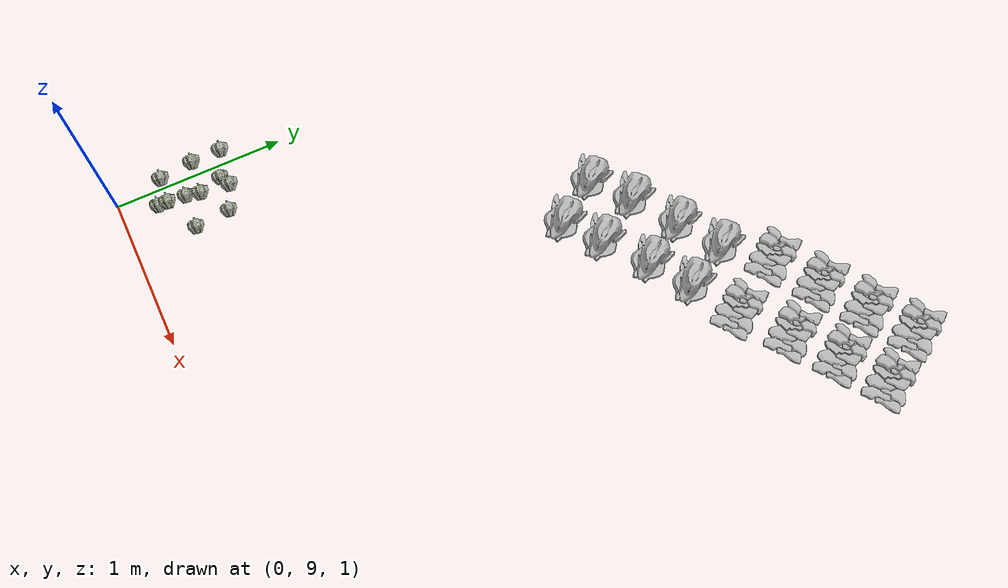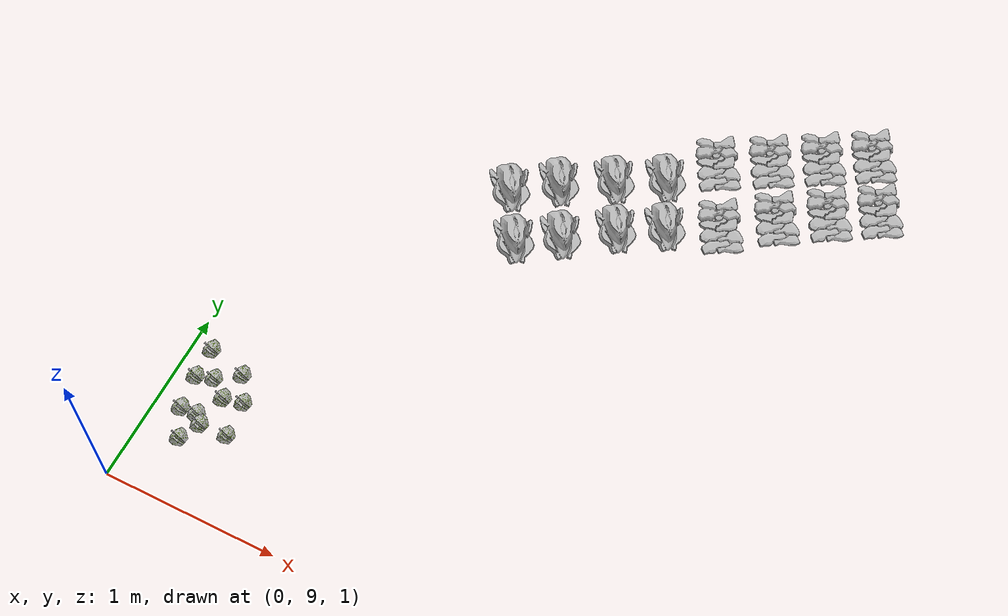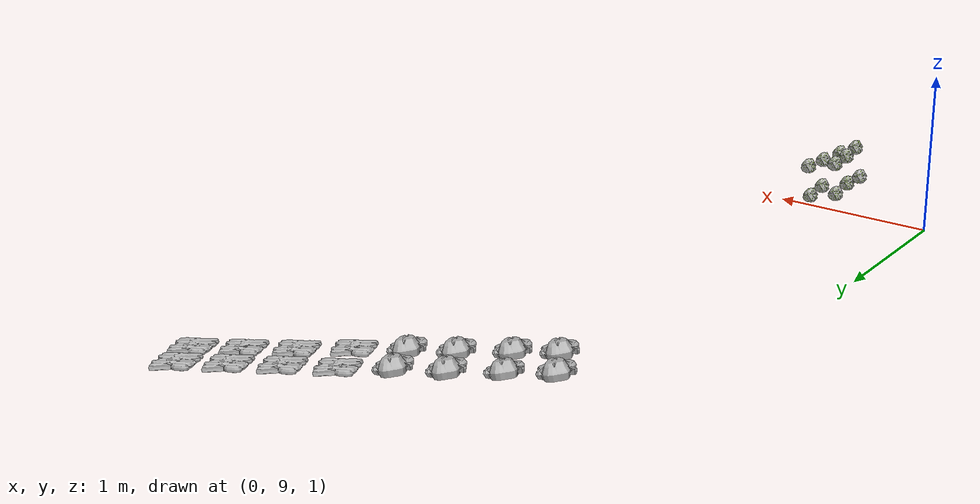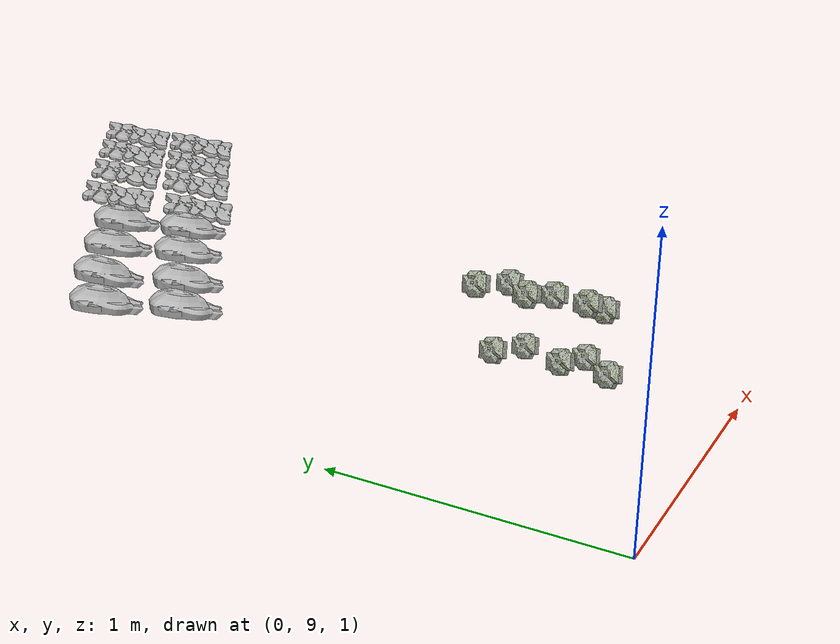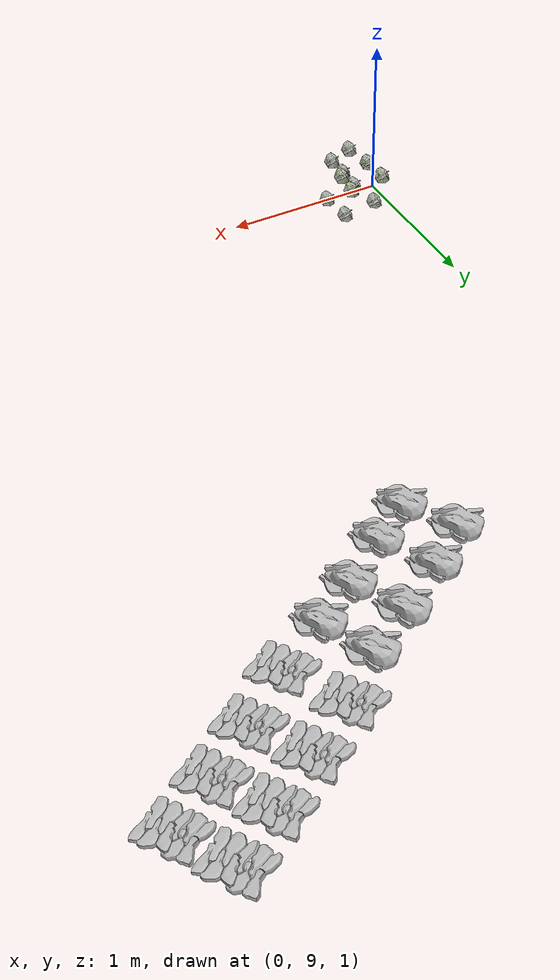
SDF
<sdf version="1.6">
 <world name="default">
  <model name="green_pepper_clone_1">
   <link name="link_1">
    <inertial>
     <mass>1</mass>
     <inertia>
      <ixx>0.166667</ixx>
      <ixy>0</ixy>
      <ixz>0</ixz>
      <iyy>0.166667</iyy>
      <iyz>0</iyz>
      <izz>0.166667</izz>
     </inertia>
    </inertial>
    <visual name="visual">
     <geometry><mesh><uri>model://green_pepper/meshes/green_pepper.dae</uri><scale>1 1 1</scale></mesh></geometry>
    </visual>
    <collision name="collision">
     <geometry><mesh><uri>model://green_pepper/meshes/green_pepper.dae</uri><scale>1 1 1</scale></mesh></geometry>
     <surface>
      <friction>
       <ode><mu>1</mu><mu2>1</mu2><fdir1>0 0 0</fdir1><slip1>0</slip1><slip2>0</slip2></ode>
       <torsional>
        <coefficient>1</coefficient>
        <patch_radius>0</patch_radius>
        <surface_radius>0</surface_radius>
        <use_patch_radius>1</use_patch_radius>
        <ode><slip>0</slip></ode>
       </torsional>
      </friction>
      <bounce><restitution_coefficient>0</restitution_coefficient><threshold>1e+06</threshold></bounce>
      <contact>
       <collide_without_contact>0</collide_without_contact>
       <collide_without_contact_bitmask>1</collide_without_contact_bitmask>
       <collide_bitmask>1</collide_bitmask>
       <ode>
        <soft_cfm>0</soft_cfm>
        <soft_erp>0.2</soft_erp>
        <kp>1e+13</kp>
        <kd>1</kd>
        <max_vel>0.01</max_vel>
        <min_depth>0</min_depth>
       </ode>
       <bullet>
        <split_impulse>1</split_impulse>
        <split_impulse_penetration_threshold>-0.01</split_impulse_penetration_threshold>
        <soft_cfm>0</soft_cfm>
        <soft_erp>0.2</soft_erp>
        <kp>1e+13</kp>
        <kd>1</kd>
       </bullet>
      </contact>
     </surface>
    </collision>
   </link>
   <static>1</static>
   <pose>0.3596 9.31791 1.55895 0.445743 -0 1.72802</pose>
  </model>
  <model name="green_pepper_clone_2">
   <link name="link_1">
    <inertial>
     <mass>1</mass>
     <inertia>
      <ixx>0.166667</ixx>
      <ixy>0</ixy>
      <ixz>0</ixz>
      <iyy>0.166667</iyy>
      <iyz>0</iyz>
      <izz>0.166667</izz>
     </inertia>
    </inertial>
    <visual name="visual">
     <geometry><mesh><uri>model://green_pepper/meshes/green_pepper.dae</uri><scale>1 1 1</scale></mesh></geometry>
    </visual>
    <collision name="collision">
     <geometry><mesh><uri>model://green_pepper/meshes/green_pepper.dae</uri><scale>1 1 1</scale></mesh></geometry>
     <surface>
      <friction>
       <ode><mu>1</mu><mu2>1</mu2><fdir1>0 0 0</fdir1><slip1>0</slip1><slip2>0</slip2></ode>
       <torsional>
        <coefficient>1</coefficient>
        <patch_radius>0</patch_radius>
        <surface_radius>0</surface_radius>
        <use_patch_radius>1</use_patch_radius>
        <ode><slip>0</slip></ode>
       </torsional>
      </friction>
      <bounce><restitution_coefficient>0</restitution_coefficient><threshold>1e+06</threshold></bounce>
      <contact>
       <collide_without_contact>0</collide_without_contact>
       <collide_without_contact_bitmask>1</collide_without_contact_bitmask>
       <collide_bitmask>1</collide_bitmask>
       <ode>
        <soft_cfm>0</soft_cfm>
        <soft_erp>0.2</soft_erp>
        <kp>1e+13</kp>
        <kd>1</kd>
        <max_vel>0.01</max_vel>
        <min_depth>0</min_depth>
       </ode>
       <bullet>
        <split_impulse>1</split_impulse>
        <split_impulse_penetration_threshold>-0.01</split_impulse_penetration_threshold>
        <soft_cfm>0</soft_cfm>
        <soft_erp>0.2</soft_erp>
        <kp>1e+13</kp>
        <kd>1</kd>
       </bullet>
      </contact>
     </surface>
    </collision>
   </link>
   <static>1</static>
   <pose>0.333174 9.49897 1.55895 0.445743 -0 1.72802</pose>
  </model>
  <model name="green_pepper_clone_3">
   <link name="link_1">
    <inertial>
     <mass>1</mass>
     <inertia>
      <ixx>0.166667</ixx>
      <ixy>0</ixy>
      <ixz>0</ixz>
      <iyy>0.166667</iyy>
      <iyz>0</iyz>
      <izz>0.166667</izz>
     </inertia>
    </inertial>
    <visual name="visual">
     <geometry><mesh><uri>model://green_pepper/meshes/green_pepper.dae</uri><scale>1 1 1</scale></mesh></geometry>
    </visual>
    <collision name="collision">
     <geometry><mesh><uri>model://green_pepper/meshes/green_pepper.dae</uri><scale>1 1 1</scale></mesh></geometry>
     <surface>
      <friction>
       <ode><mu>1</mu><mu2>1</mu2><fdir1>0 0 0</fdir1><slip1>0</slip1><slip2>0</slip2></ode>
       <torsional>
        <coefficient>1</coefficient>
        <patch_radius>0</patch_radius>
        <surface_radius>0</surface_radius>
        <use_patch_radius>1</use_patch_radius>
        <ode><slip>0</slip></ode>
       </torsional>
      </friction>
      <bounce><restitution_coefficient>0</restitution_coefficient><threshold>1e+06</threshold></bounce>
      <contact>
       <collide_without_contact>0</collide_without_contact>
       <collide_without_contact_bitmask>1</collide_without_contact_bitmask>
       <collide_bitmask>1</collide_bitmask>
       <ode>
        <soft_cfm>0</soft_cfm>
        <soft_erp>0.2</soft_erp>
        <kp>1e+13</kp>
        <kd>1</kd>
        <max_vel>0.01</max_vel>
        <min_depth>0</min_depth>
       </ode>
       <bullet>
        <split_impulse>1</split_impulse>
        <split_impulse_penetration_threshold>-0.01</split_impulse_penetration_threshold>
        <soft_cfm>0</soft_cfm>
        <soft_erp>0.2</soft_erp>
        <kp>1e+13</kp>
        <kd>1</kd>
       </bullet>
      </contact>
     </surface>
    </collision>
   </link>
   <static>1</static>
   <pose>0.327992 9.66153 1.55895 0.445743 -0 1.72802</pose>
  </model>
  <model name="green_pepper_clone_4_clone_1">
   <link name="link_1">
    <inertial>
     <mass>1</mass>
     <inertia>
      <ixx>0.166667</ixx>
      <ixy>0</ixy>
      <ixz>0</ixz>
      <iyy>0.166667</iyy>
      <iyz>0</iyz>
      <izz>0.166667</izz>
     </inertia>
    </inertial>
    <visual name="visual">
     <geometry><mesh><uri>model://green_pepper/meshes/green_pepper.dae</uri><scale>1 1 1</scale></mesh></geometry>
    </visual>
    <collision name="collision">
     <geometry><mesh><uri>model://green_pepper/meshes/green_pepper.dae</uri><scale>1 1 1</scale></mesh></geometry>
     <surface>
      <friction>
       <ode><mu>1</mu><mu2>1</mu2><fdir1>0 0 0</fdir1><slip1>0</slip1><slip2>0</slip2></ode>
       <torsional>
        <coefficient>1</coefficient>
        <patch_radius>0</patch_radius>
        <surface_radius>0</surface_radius>
        <use_patch_radius>1</use_patch_radius>
        <ode><slip>0</slip></ode>
       </torsional>
      </friction>
      <bounce><restitution_coefficient>0</restitution_coefficient><threshold>1e+06</threshold></bounce>
      <contact>
       <collide_without_contact>0</collide_without_contact>
       <collide_without_contact_bitmask>1</collide_without_contact_bitmask>
       <collide_bitmask>1</collide_bitmask>
       <ode>
        <soft_cfm>0</soft_cfm>
        <soft_erp>0.2</soft_erp>
        <kp>1e+13</kp>
        <kd>1</kd>
        <max_vel>0.01</max_vel>
        <min_depth>0</min_depth>
       </ode>
       <bullet>
        <split_impulse>1</split_impulse>
        <split_impulse_penetration_threshold>-0.01</split_impulse_penetration_threshold>
        <soft_cfm>0</soft_cfm>
        <soft_erp>0.2</soft_erp>
        <kp>1e+13</kp>
        <kd>1</kd>
       </bullet>
      </contact>
     </surface>
    </collision>
   </link>
   <static>1</static>
   <pose>0.468012 9.30152 1.498 0.445743 -0 1.72802</pose>
  </model>
  <model name="green_pepper_clone_4_clone_2">
   <link name="link_1">
    <inertial>
     <mass>1</mass>
     <inertia>
      <ixx>0.166667</ixx>
      <ixy>0</ixy>
      <ixz>0</ixz>
      <iyy>0.166667</iyy>
      <iyz>0</iyz>
      <izz>0.166667</izz>
     </inertia>
    </inertial>
    <visual name="visual">
     <geometry><mesh><uri>model://green_pepper/meshes/green_pepper.dae</uri><scale>1 1 1</scale></mesh></geometry>
    </visual>
    <collision name="collision">
     <geometry><mesh><uri>model://green_pepper/meshes/green_pepper.dae</uri><scale>1 1 1</scale></mesh></geometry>
     <surface>
      <friction>
       <ode><mu>1</mu><mu2>1</mu2><fdir1>0 0 0</fdir1><slip1>0</slip1><slip2>0</slip2></ode>
       <torsional>
        <coefficient>1</coefficient>
        <patch_radius>0</patch_radius>
        <surface_radius>0</surface_radius>
        <use_patch_radius>1</use_patch_radius>
        <ode><slip>0</slip></ode>
       </torsional>
      </friction>
      <bounce><restitution_coefficient>0</restitution_coefficient><threshold>1e+06</threshold></bounce>
      <contact>
       <collide_without_contact>0</collide_without_contact>
       <collide_without_contact_bitmask>1</collide_without_contact_bitmask>
       <collide_bitmask>1</collide_bitmask>
       <ode>
        <soft_cfm>0</soft_cfm>
        <soft_erp>0.2</soft_erp>
        <kp>1e+13</kp>
        <kd>1</kd>
        <max_vel>0.01</max_vel>
        <min_depth>0</min_depth>
       </ode>
       <bullet>
        <split_impulse>1</split_impulse>
        <split_impulse_penetration_threshold>-0.01</split_impulse_penetration_threshold>
        <soft_cfm>0</soft_cfm>
        <soft_erp>0.2</soft_erp>
        <kp>1e+13</kp>
        <kd>1</kd>
       </bullet>
      </contact>
     </surface>
    </collision>
   </link>
   <static>1</static>
   <pose>0.495018 9.47505 1.498 0.445743 -0 1.72802</pose>
  </model>
  <model name="green_pepper_clone_4_clone_3">
   <link name="link_1">
    <inertial>
     <mass>1</mass>
     <inertia>
      <ixx>0.166667</ixx>
      <ixy>0</ixy>
      <ixz>0</ixz>
      <iyy>0.166667</iyy>
      <iyz>0</iyz>
      <izz>0.166667</izz>
     </inertia>
    </inertial>
    <visual name="visual">
     <geometry><mesh><uri>model://green_pepper/meshes/green_pepper.dae</uri><scale>1 1 1</scale></mesh></geometry>
    </visual>
    <collision name="collision">
     <geometry><mesh><uri>model://green_pepper/meshes/green_pepper.dae</uri><scale>1 1 1</scale></mesh></geometry>
     <surface>
      <friction>
       <ode><mu>1</mu><mu2>1</mu2><fdir1>0 0 0</fdir1><slip1>0</slip1><slip2>0</slip2></ode>
       <torsional>
        <coefficient>1</coefficient>
        <patch_radius>0</patch_radius>
        <surface_radius>0</surface_radius>
        <use_patch_radius>1</use_patch_radius>
        <ode><slip>0</slip></ode>
       </torsional>
      </friction>
      <bounce><restitution_coefficient>0</restitution_coefficient><threshold>1e+06</threshold></bounce>
      <contact>
       <collide_without_contact>0</collide_without_contact>
       <collide_without_contact_bitmask>1</collide_without_contact_bitmask>
       <collide_bitmask>1</collide_bitmask>
       <ode>
        <soft_cfm>0</soft_cfm>
        <soft_erp>0.2</soft_erp>
        <kp>1e+13</kp>
        <kd>1</kd>
        <max_vel>0.01</max_vel>
        <min_depth>0</min_depth>
       </ode>
       <bullet>
        <split_impulse>1</split_impulse>
        <split_impulse_penetration_threshold>-0.01</split_impulse_penetration_threshold>
        <soft_cfm>0</soft_cfm>
        <soft_erp>0.2</soft_erp>
        <kp>1e+13</kp>
        <kd>1</kd>
       </bullet>
      </contact>
     </surface>
    </collision>
   </link>
   <static>1</static>
   <pose>0.515147 9.63083 1.498 0.445743 -0 1.72802</pose>
  </model>
  <model name="green_pepper_clone_4_clone_4_clone_1">
   <link name="link_1">
    <inertial>
     <mass>1</mass>
     <inertia>
      <ixx>0.166667</ixx>
      <ixy>0</ixy>
      <ixz>0</ixz>
      <iyy>0.166667</iyy>
      <iyz>0</iyz>
      <izz>0.166667</izz>
     </inertia>
    </inertial>
    <visual name="visual">
     <geometry><mesh><uri>model://green_pepper/meshes/green_pepper.dae</uri><scale>1 1 1</scale></mesh></geometry>
    </visual>
    <collision name="collision">
     <geometry><mesh><uri>model://green_pepper/meshes/green_pepper.dae</uri><scale>1 1 1</scale></mesh></geometry>
     <surface>
      <friction>
       <ode><mu>1</mu><mu2>1</mu2><fdir1>0 0 0</fdir1><slip1>0</slip1><slip2>0</slip2></ode>
       <torsional>
        <coefficient>1</coefficient>
        <patch_radius>0</patch_radius>
        <surface_radius>0</surface_radius>
        <use_patch_radius>1</use_patch_radius>
        <ode><slip>0</slip></ode>
       </torsional>
      </friction>
      <bounce><restitution_coefficient>0</restitution_coefficient><threshold>1e+06</threshold></bounce>
      <contact>
       <collide_without_contact>0</collide_without_contact>
       <collide_without_contact_bitmask>1</collide_without_contact_bitmask>
       <collide_bitmask>1</collide_bitmask>
       <ode>
        <soft_cfm>0</soft_cfm>
        <soft_erp>0.2</soft_erp>
        <kp>1e+13</kp>
        <kd>1</kd>
        <max_vel>0.01</max_vel>
        <min_depth>0</min_depth>
       </ode>
       <bullet>
        <split_impulse>1</split_impulse>
        <split_impulse_penetration_threshold>-0.01</split_impulse_penetration_threshold>
        <soft_cfm>0</soft_cfm>
        <soft_erp>0.2</soft_erp>
        <kp>1e+13</kp>
        <kd>1</kd>
       </bullet>
      </contact>
     </surface>
    </collision>
   </link>
   <static>1</static>
   <pose>0.355469 9.24019 1.34771 0.445743 -0 1.72802</pose>
  </model>
  <model name="green_pepper_clone_4_clone_4_clone_2">
   <link name="link_1">
    <inertial>
     <mass>1</mass>
     <inertia>
      <ixx>0.166667</ixx>
      <ixy>0</ixy>
      <ixz>0</ixz>
      <iyy>0.166667</iyy>
      <iyz>0</iyz>
      <izz>0.166667</izz>
     </inertia>
    </inertial>
    <visual name="visual">
     <geometry><mesh><uri>model://green_pepper/meshes/green_pepper.dae</uri><scale>1 1 1</scale></mesh></geometry>
    </visual>
    <collision name="collision">
     <geometry><mesh><uri>model://green_pepper/meshes/green_pepper.dae</uri><scale>1 1 1</scale></mesh></geometry>
     <surface>
      <friction>
       <ode><mu>1</mu><mu2>1</mu2><fdir1>0 0 0</fdir1><slip1>0</slip1><slip2>0</slip2></ode>
       <torsional>
        <coefficient>1</coefficient>
        <patch_radius>0</patch_radius>
        <surface_radius>0</surface_radius>
        <use_patch_radius>1</use_patch_radius>
        <ode><slip>0</slip></ode>
       </torsional>
      </friction>
      <bounce><restitution_coefficient>0</restitution_coefficient><threshold>1e+06</threshold></bounce>
      <contact>
       <collide_without_contact>0</collide_without_contact>
       <collide_without_contact_bitmask>1</collide_without_contact_bitmask>
       <collide_bitmask>1</collide_bitmask>
       <ode>
        <soft_cfm>0</soft_cfm>
        <soft_erp>0.2</soft_erp>
        <kp>1e+13</kp>
        <kd>1</kd>
        <max_vel>0.01</max_vel>
        <min_depth>0</min_depth>
       </ode>
       <bullet>
        <split_impulse>1</split_impulse>
        <split_impulse_penetration_threshold>-0.01</split_impulse_penetration_threshold>
        <soft_cfm>0</soft_cfm>
        <soft_erp>0.2</soft_erp>
        <kp>1e+13</kp>
        <kd>1</kd>
       </bullet>
      </contact>
     </surface>
    </collision>
   </link>
   <static>1</static>
   <pose>0.365029 9.39441 1.34771 0.445743 -0 1.72802</pose>
  </model>
  <model name="green_pepper_clone_4_clone_4_clone_3">
   <link name="link_1">
    <inertial>
     <mass>1</mass>
     <inertia>
      <ixx>0.166667</ixx>
      <ixy>0</ixy>
      <ixz>0</ixz>
      <iyy>0.166667</iyy>
      <iyz>0</iyz>
      <izz>0.166667</izz>
     </inertia>
    </inertial>
    <visual name="visual">
     <geometry><mesh><uri>model://green_pepper/meshes/green_pepper.dae</uri><scale>1 1 1</scale></mesh></geometry>
    </visual>
    <collision name="collision">
     <geometry><mesh><uri>model://green_pepper/meshes/green_pepper.dae</uri><scale>1 1 1</scale></mesh></geometry>
     <surface>
      <friction>
       <ode><mu>1</mu><mu2>1</mu2><fdir1>0 0 0</fdir1><slip1>0</slip1><slip2>0</slip2></ode>
       <torsional>
        <coefficient>1</coefficient>
        <patch_radius>0</patch_radius>
        <surface_radius>0</surface_radius>
        <use_patch_radius>1</use_patch_radius>
        <ode><slip>0</slip></ode>
       </torsional>
      </friction>
      <bounce><restitution_coefficient>0</restitution_coefficient><threshold>1e+06</threshold></bounce>
      <contact>
       <collide_without_contact>0</collide_without_contact>
       <collide_without_contact_bitmask>1</collide_without_contact_bitmask>
       <collide_bitmask>1</collide_bitmask>
       <ode>
        <soft_cfm>0</soft_cfm>
        <soft_erp>0.2</soft_erp>
        <kp>1e+13</kp>
        <kd>1</kd>
        <max_vel>0.01</max_vel>
        <min_depth>0</min_depth>
       </ode>
       <bullet>
        <split_impulse>1</split_impulse>
        <split_impulse_penetration_threshold>-0.01</split_impulse_penetration_threshold>
        <soft_cfm>0</soft_cfm>
        <soft_erp>0.2</soft_erp>
        <kp>1e+13</kp>
        <kd>1</kd>
       </bullet>
      </contact>
     </surface>
    </collision>
   </link>
   <static>1</static>
   <pose>0.339407 9.60317 1.34771 0.445743 -0 1.72802</pose>
  </model>
  <model name="green_pepper_clone_4_clone_4_clone_4_clone_2">
   <link name="link_1">
    <inertial>
     <mass>1</mass>
     <inertia>
      <ixx>0.166667</ixx>
      <ixy>0</ixy>
      <ixz>0</ixz>
      <iyy>0.166667</iyy>
      <iyz>0</iyz>
      <izz>0.166667</izz>
     </inertia>
    </inertial>
    <visual name="visual">
     <geometry><mesh><uri>model://green_pepper/meshes/green_pepper.dae</uri><scale>1 1 1</scale></mesh></geometry>
    </visual>
    <collision name="collision">
     <geometry><mesh><uri>model://green_pepper/meshes/green_pepper.dae</uri><scale>1 1 1</scale></mesh></geometry>
     <surface>
      <friction>
       <ode><mu>1</mu><mu2>1</mu2><fdir1>0 0 0</fdir1><slip1>0</slip1><slip2>0</slip2></ode>
       <torsional>
        <coefficient>1</coefficient>
        <patch_radius>0</patch_radius>
        <surface_radius>0</surface_radius>
        <use_patch_radius>1</use_patch_radius>
        <ode><slip>0</slip></ode>
       </torsional>
      </friction>
      <bounce><restitution_coefficient>0</restitution_coefficient><threshold>1e+06</threshold></bounce>
      <contact>
       <collide_without_contact>0</collide_without_contact>
       <collide_without_contact_bitmask>1</collide_without_contact_bitmask>
       <collide_bitmask>1</collide_bitmask>
       <ode>
        <soft_cfm>0</soft_cfm>
        <soft_erp>0.2</soft_erp>
        <kp>1e+13</kp>
        <kd>1</kd>
        <max_vel>0.01</max_vel>
        <min_depth>0</min_depth>
       </ode>
       <bullet>
        <split_impulse>1</split_impulse>
        <split_impulse_penetration_threshold>-0.01</split_impulse_penetration_threshold>
        <soft_cfm>0</soft_cfm>
        <soft_erp>0.2</soft_erp>
        <kp>1e+13</kp>
        <kd>1</kd>
       </bullet>
      </contact>
     </surface>
    </collision>
   </link>
   <static>1</static>
   <pose>0.541477 9.37736 1.29005 0.445743 -0 1.72802</pose>
  </model>
  <model name="green_pepper_clone_4_clone_4_clone_4_clone_3">
   <link name="link_1">
    <inertial>
     <mass>1</mass>
     <inertia>
      <ixx>0.166667</ixx>
      <ixy>0</ixy>
      <ixz>0</ixz>
      <iyy>0.166667</iyy>
      <iyz>0</iyz>
      <izz>0.166667</izz>
     </inertia>
    </inertial>
    <visual name="visual">
     <geometry><mesh><uri>model://green_pepper/meshes/green_pepper.dae</uri><scale>1 1 1</scale></mesh></geometry>
    </visual>
    <collision name="collision">
     <geometry><mesh><uri>model://green_pepper/meshes/green_pepper.dae</uri><scale>1 1 1</scale></mesh></geometry>
     <surface>
      <friction>
       <ode><mu>1</mu><mu2>1</mu2><fdir1>0 0 0</fdir1><slip1>0</slip1><slip2>0</slip2></ode>
       <torsional>
        <coefficient>1</coefficient>
        <patch_radius>0</patch_radius>
        <surface_radius>0</surface_radius>
        <use_patch_radius>1</use_patch_radius>
        <ode><slip>0</slip></ode>
       </torsional>
      </friction>
      <bounce><restitution_coefficient>0</restitution_coefficient><threshold>1e+06</threshold></bounce>
      <contact>
       <collide_without_contact>0</collide_without_contact>
       <collide_without_contact_bitmask>1</collide_without_contact_bitmask>
       <collide_bitmask>1</collide_bitmask>
       <ode>
        <soft_cfm>0</soft_cfm>
        <soft_erp>0.2</soft_erp>
        <kp>1e+13</kp>
        <kd>1</kd>
        <max_vel>0.01</max_vel>
        <min_depth>0</min_depth>
       </ode>
       <bullet>
        <split_impulse>1</split_impulse>
        <split_impulse_penetration_threshold>-0.01</split_impulse_penetration_threshold>
        <soft_cfm>0</soft_cfm>
        <soft_erp>0.2</soft_erp>
        <kp>1e+13</kp>
        <kd>1</kd>
       </bullet>
      </contact>
     </surface>
    </collision>
   </link>
   <static>1</static>
   <pose>0.522293 9.5729 1.29005 0.445743 -0 1.72802</pose>
  </model>
  <model name="chicken">
   <link name="link_0">
    <inertial>
     <mass>1</mass>
     <inertia>
      <ixx>0.166667</ixx>
      <ixy>0</ixy>
      <ixz>0</ixz>
      <iyy>0.166667</iyy>
      <iyz>0</iyz>
      <izz>0.166667</izz>
     </inertia>
    </inertial>
    <visual name="visual">
     <geometry><mesh><uri>model://chicken/meshes/chicken.dae</uri><scale>1 1 1</scale></mesh></geometry>
    </visual>
    <collision name="collision">
     <geometry><mesh><uri>model://chicken/meshes/chicken.dae</uri><scale>1 1 1</scale></mesh></geometry>
     <surface>
      <friction>
       <ode><mu>1</mu><mu2>1</mu2><fdir1>0 0 0</fdir1><slip1>0</slip1><slip2>0</slip2></ode>
       <torsional>
        <coefficient>1</coefficient>
        <patch_radius>0</patch_radius>
        <surface_radius>0</surface_radius>
        <use_patch_radius>1</use_patch_radius>
        <ode><slip>0</slip></ode>
       </torsional>
      </friction>
      <bounce><restitution_coefficient>0</restitution_coefficient><threshold>1e+06</threshold></bounce>
      <contact>
       <collide_without_contact>0</collide_without_contact>
       <collide_without_contact_bitmask>1</collide_without_contact_bitmask>
       <collide_bitmask>1</collide_bitmask>
       <ode>
        <soft_cfm>0</soft_cfm>
        <soft_erp>0.2</soft_erp>
        <kp>1e+13</kp>
        <kd>1</kd>
        <max_vel>0.01</max_vel>
        <min_depth>0</min_depth>
       </ode>
       <bullet>
        <split_impulse>1</split_impulse>
        <split_impulse_penetration_threshold>-0.01</split_impulse_penetration_threshold>
        <soft_cfm>0</soft_cfm>
        <soft_erp>0.2</soft_erp>
        <kp>1e+13</kp>
        <kd>1</kd>
       </bullet>
      </contact>
     </surface>
    </collision>
   </link>
   <static>1</static>
   <pose>1.23301 11.7625 0.803121 0.278699 0.140205 0.651322</pose>
  </model>
  <model name="chicken_clone">
   <link name="link_0">
    <inertial>
     <mass>1</mass>
     <inertia>
      <ixx>0.166667</ixx>
      <ixy>0</ixy>
      <ixz>0</ixz>
      <iyy>0.166667</iyy>
      <iyz>0</iyz>
      <izz>0.166667</izz>
     </inertia>
    </inertial>
    <visual name="visual">
     <geometry><mesh><uri>model://chicken/meshes/chicken.dae</uri><scale>1 1 1</scale></mesh></geometry>
    </visual>
    <collision name="collision">
     <geometry><mesh><uri>model://chicken/meshes/chicken.dae</uri><scale>1 1 1</scale></mesh></geometry>
     <surface>
      <friction>
       <ode><mu>1</mu><mu2>1</mu2><fdir1>0 0 0</fdir1><slip1>0</slip1><slip2>0</slip2></ode>
       <torsional>
        <coefficient>1</coefficient>
        <patch_radius>0</patch_radius>
        <surface_radius>0</surface_radius>
        <use_patch_radius>1</use_patch_radius>
        <ode><slip>0</slip></ode>
       </torsional>
      </friction>
      <bounce><restitution_coefficient>0</restitution_coefficient><threshold>1e+06</threshold></bounce>
      <contact>
       <collide_without_contact>0</collide_without_contact>
       <collide_without_contact_bitmask>1</collide_without_contact_bitmask>
       <collide_bitmask>1</collide_bitmask>
       <ode>
        <soft_cfm>0</soft_cfm>
        <soft_erp>0.2</soft_erp>
        <kp>1e+13</kp>
        <kd>1</kd>
        <max_vel>0.01</max_vel>
        <min_depth>0</min_depth>
       </ode>
       <bullet>
        <split_impulse>1</split_impulse>
        <split_impulse_penetration_threshold>-0.01</split_impulse_penetration_threshold>
        <soft_cfm>0</soft_cfm>
        <soft_erp>0.2</soft_erp>
        <kp>1e+13</kp>
        <kd>1</kd>
       </bullet>
      </contact>
     </surface>
    </collision>
   </link>
   <static>1</static>
   <pose>1.00016 11.5985 0.803121 0.201357 0.140205 0.651322</pose>
  </model>
  <model name="chicken_clone_0">
   <link name="link_0">
    <inertial>
     <mass>1</mass>
     <inertia>
      <ixx>0.166667</ixx>
      <ixy>0</ixy>
      <ixz>0</ixz>
      <iyy>0.166667</iyy>
      <iyz>0</iyz>
      <izz>0.166667</izz>
     </inertia>
    </inertial>
    <visual name="visual">
     <geometry><mesh><uri>model://chicken/meshes/chicken.dae</uri><scale>1 1 1</scale></mesh></geometry>
    </visual>
    <collision name="collision">
     <geometry><mesh><uri>model://chicken/meshes/chicken.dae</uri><scale>1 1 1</scale></mesh></geometry>
     <surface>
      <friction>
       <ode><mu>1</mu><mu2>1</mu2><fdir1>0 0 0</fdir1><slip1>0</slip1><slip2>0</slip2></ode>
       <torsional>
        <coefficient>1</coefficient>
        <patch_radius>0</patch_radius>
        <surface_radius>0</surface_radius>
        <use_patch_radius>1</use_patch_radius>
        <ode><slip>0</slip></ode>
       </torsional>
      </friction>
      <bounce><restitution_coefficient>0</restitution_coefficient><threshold>1e+06</threshold></bounce>
      <contact>
       <collide_without_contact>0</collide_without_contact>
       <collide_without_contact_bitmask>1</collide_without_contact_bitmask>
       <collide_bitmask>1</collide_bitmask>
       <ode>
        <soft_cfm>0</soft_cfm>
        <soft_erp>0.2</soft_erp>
        <kp>1e+13</kp>
        <kd>1</kd>
        <max_vel>0.01</max_vel>
        <min_depth>0</min_depth>
       </ode>
       <bullet>
        <split_impulse>1</split_impulse>
        <split_impulse_penetration_threshold>-0.01</split_impulse_penetration_threshold>
        <soft_cfm>0</soft_cfm>
        <soft_erp>0.2</soft_erp>
        <kp>1e+13</kp>
        <kd>1</kd>
       </bullet>
      </contact>
     </surface>
    </collision>
   </link>
   <static>1</static>
   <pose>1.50957 11.9217 0.803121 0.201357 0.140205 0.651322</pose>
  </model>
  <model name="chicken_clone_1">
   <link name="link_0">
    <inertial>
     <mass>1</mass>
     <inertia>
      <ixx>0.166667</ixx>
      <ixy>0</ixy>
      <ixz>0</ixz>
      <iyy>0.166667</iyy>
      <iyz>0</iyz>
      <izz>0.166667</izz>
     </inertia>
    </inertial>
    <visual name="visual">
     <geometry><mesh><uri>model://chicken/meshes/chicken.dae</uri><scale>1 1 1</scale></mesh></geometry>
    </visual>
    <collision name="collision">
     <geometry><mesh><uri>model://chicken/meshes/chicken.dae</uri><scale>1 1 1</scale></mesh></geometry>
     <surface>
      <friction>
       <ode><mu>1</mu><mu2>1</mu2><fdir1>0 0 0</fdir1><slip1>0</slip1><slip2>0</slip2></ode>
       <torsional>
        <coefficient>1</coefficient>
        <patch_radius>0</patch_radius>
        <surface_radius>0</surface_radius>
        <use_patch_radius>1</use_patch_radius>
        <ode><slip>0</slip></ode>
       </torsional>
      </friction>
      <bounce><restitution_coefficient>0</restitution_coefficient><threshold>1e+06</threshold></bounce>
      <contact>
       <collide_without_contact>0</collide_without_contact>
       <collide_without_contact_bitmask>1</collide_without_contact_bitmask>
       <collide_bitmask>1</collide_bitmask>
       <ode>
        <soft_cfm>0</soft_cfm>
        <soft_erp>0.2</soft_erp>
        <kp>1e+13</kp>
        <kd>1</kd>
        <max_vel>0.01</max_vel>
        <min_depth>0</min_depth>
       </ode>
       <bullet>
        <split_impulse>1</split_impulse>
        <split_impulse_penetration_threshold>-0.01</split_impulse_penetration_threshold>
        <soft_cfm>0</soft_cfm>
        <soft_erp>0.2</soft_erp>
        <kp>1e+13</kp>
        <kd>1</kd>
       </bullet>
      </contact>
     </surface>
    </collision>
   </link>
   <static>1</static>
   <pose>1.768 12.0658 0.803121 0.201357 0.140205 0.651322</pose>
  </model>
  <model name="chicken_clone_2">
   <link name="link_0">
    <inertial>
     <mass>1</mass>
     <inertia>
      <ixx>0.166667</ixx>
      <ixy>0</ixy>
      <ixz>0</ixz>
      <iyy>0.166667</iyy>
      <iyz>0</iyz>
      <izz>0.166667</izz>
     </inertia>
    </inertial>
    <visual name="visual">
     <geometry><mesh><uri>model://chicken/meshes/chicken.dae</uri><scale>1 1 1</scale></mesh></geometry>
    </visual>
    <collision name="collision">
     <geometry><mesh><uri>model://chicken/meshes/chicken.dae</uri><scale>1 1 1</scale></mesh></geometry>
     <surface>
      <friction>
       <ode><mu>1</mu><mu2>1</mu2><fdir1>0 0 0</fdir1><slip1>0</slip1><slip2>0</slip2></ode>
       <torsional>
        <coefficient>1</coefficient>
        <patch_radius>0</patch_radius>
        <surface_radius>0</surface_radius>
        <use_patch_radius>1</use_patch_radius>
        <ode><slip>0</slip></ode>
       </torsional>
      </friction>
      <bounce><restitution_coefficient>0</restitution_coefficient><threshold>1e+06</threshold></bounce>
      <contact>
       <collide_without_contact>0</collide_without_contact>
       <collide_without_contact_bitmask>1</collide_without_contact_bitmask>
       <collide_bitmask>1</collide_bitmask>
       <ode>
        <soft_cfm>0</soft_cfm>
        <soft_erp>0.2</soft_erp>
        <kp>1e+13</kp>
        <kd>1</kd>
        <max_vel>0.01</max_vel>
        <min_depth>0</min_depth>
       </ode>
       <bullet>
        <split_impulse>1</split_impulse>
        <split_impulse_penetration_threshold>-0.01</split_impulse_penetration_threshold>
        <soft_cfm>0</soft_cfm>
        <soft_erp>0.2</soft_erp>
        <kp>1e+13</kp>
        <kd>1</kd>
       </bullet>
      </contact>
     </surface>
    </collision>
   </link>
   <static>1</static>
   <pose>1.89736 11.7862 0.774239 0.201357 0.140205 0.651322</pose>
  </model>
  <model name="chicken_clone_2_clone">
   <link name="link_0">
    <inertial>
     <mass>1</mass>
     <inertia>
      <ixx>0.166667</ixx>
      <ixy>0</ixy>
      <ixz>0</ixz>
      <iyy>0.166667</iyy>
      <iyz>0</iyz>
      <izz>0.166667</izz>
     </inertia>
    </inertial>
    <visual name="visual">
     <geometry><mesh><uri>model://chicken/meshes/chicken.dae</uri><scale>1 1 1</scale></mesh></geometry>
    </visual>
    <collision name="collision">
     <geometry><mesh><uri>model://chicken/meshes/chicken.dae</uri><scale>1 1 1</scale></mesh></geometry>
     <surface>
      <friction>
       <ode><mu>1</mu><mu2>1</mu2><fdir1>0 0 0</fdir1><slip1>0</slip1><slip2>0</slip2></ode>
       <torsional>
        <coefficient>1</coefficient>
        <patch_radius>0</patch_radius>
        <surface_radius>0</surface_radius>
        <use_patch_radius>1</use_patch_radius>
        <ode><slip>0</slip></ode>
       </torsional>
      </friction>
      <bounce><restitution_coefficient>0</restitution_coefficient><threshold>1e+06</threshold></bounce>
      <contact>
       <collide_without_contact>0</collide_without_contact>
       <collide_without_contact_bitmask>1</collide_without_contact_bitmask>
       <collide_bitmask>1</collide_bitmask>
       <ode>
        <soft_cfm>0</soft_cfm>
        <soft_erp>0.2</soft_erp>
        <kp>1e+13</kp>
        <kd>1</kd>
        <max_vel>0.01</max_vel>
        <min_depth>0</min_depth>
       </ode>
       <bullet>
        <split_impulse>1</split_impulse>
        <split_impulse_penetration_threshold>-0.01</split_impulse_penetration_threshold>
        <soft_cfm>0</soft_cfm>
        <soft_erp>0.2</soft_erp>
        <kp>1e+13</kp>
        <kd>1</kd>
       </bullet>
      </contact>
     </surface>
    </collision>
   </link>
   <static>1</static>
   <pose>1.65446 11.6453 0.774239 0.201357 0.140205 0.651322</pose>
  </model>
  <model name="chicken_clone_2_clone_0">
   <link name="link_0">
    <inertial>
     <mass>1</mass>
     <inertia>
      <ixx>0.166667</ixx>
      <ixy>0</ixy>
      <ixz>0</ixz>
      <iyy>0.166667</iyy>
      <iyz>0</iyz>
      <izz>0.166667</izz>
     </inertia>
    </inertial>
    <visual name="visual">
     <geometry><mesh><uri>model://chicken/meshes/chicken.dae</uri><scale>1 1 1</scale></mesh></geometry>
    </visual>
    <collision name="collision">
     <geometry><mesh><uri>model://chicken/meshes/chicken.dae</uri><scale>1 1 1</scale></mesh></geometry>
     <surface>
      <friction>
       <ode><mu>1</mu><mu2>1</mu2><fdir1>0 0 0</fdir1><slip1>0</slip1><slip2>0</slip2></ode>
       <torsional>
        <coefficient>1</coefficient>
        <patch_radius>0</patch_radius>
        <surface_radius>0</surface_radius>
        <use_patch_radius>1</use_patch_radius>
        <ode><slip>0</slip></ode>
       </torsional>
      </friction>
      <bounce><restitution_coefficient>0</restitution_coefficient><threshold>1e+06</threshold></bounce>
      <contact>
       <collide_without_contact>0</collide_without_contact>
       <collide_without_contact_bitmask>1</collide_without_contact_bitmask>
       <collide_bitmask>1</collide_bitmask>
       <ode>
        <soft_cfm>0</soft_cfm>
        <soft_erp>0.2</soft_erp>
        <kp>1e+13</kp>
        <kd>1</kd>
        <max_vel>0.01</max_vel>
        <min_depth>0</min_depth>
       </ode>
       <bullet>
        <split_impulse>1</split_impulse>
        <split_impulse_penetration_threshold>-0.01</split_impulse_penetration_threshold>
        <soft_cfm>0</soft_cfm>
        <soft_erp>0.2</soft_erp>
        <kp>1e+13</kp>
        <kd>1</kd>
       </bullet>
      </contact>
     </surface>
    </collision>
   </link>
   <static>1</static>
   <pose>1.39315 11.4664 0.774239 0.201357 0.140205 0.651322</pose>
  </model>
  <model name="chicken_clone_2_clone_1">
   <link name="link_0">
    <inertial>
     <mass>1</mass>
     <inertia>
      <ixx>0.166667</ixx>
      <ixy>0</ixy>
      <ixz>0</ixz>
      <iyy>0.166667</iyy>
      <iyz>0</iyz>
      <izz>0.166667</izz>
     </inertia>
    </inertial>
    <visual name="visual">
     <geometry><mesh><uri>model://chicken/meshes/chicken.dae</uri><scale>1 1 1</scale></mesh></geometry>
    </visual>
    <collision name="collision">
     <geometry><mesh><uri>model://chicken/meshes/chicken.dae</uri><scale>1 1 1</scale></mesh></geometry>
     <surface>
      <friction>
       <ode><mu>1</mu><mu2>1</mu2><fdir1>0 0 0</fdir1><slip1>0</slip1><slip2>0</slip2></ode>
       <torsional>
        <coefficient>1</coefficient>
        <patch_radius>0</patch_radius>
        <surface_radius>0</surface_radius>
        <use_patch_radius>1</use_patch_radius>
        <ode><slip>0</slip></ode>
       </torsional>
      </friction>
      <bounce><restitution_coefficient>0</restitution_coefficient><threshold>1e+06</threshold></bounce>
      <contact>
       <collide_without_contact>0</collide_without_contact>
       <collide_without_contact_bitmask>1</collide_without_contact_bitmask>
       <collide_bitmask>1</collide_bitmask>
       <ode>
        <soft_cfm>0</soft_cfm>
        <soft_erp>0.2</soft_erp>
        <kp>1e+13</kp>
        <kd>1</kd>
        <max_vel>0.01</max_vel>
        <min_depth>0</min_depth>
       </ode>
       <bullet>
        <split_impulse>1</split_impulse>
        <split_impulse_penetration_threshold>-0.01</split_impulse_penetration_threshold>
        <soft_cfm>0</soft_cfm>
        <soft_erp>0.2</soft_erp>
        <kp>1e+13</kp>
        <kd>1</kd>
       </bullet>
      </contact>
     </surface>
    </collision>
   </link>
   <static>1</static>
   <pose>1.16909 11.3227 0.774239 0.201357 0.140205 0.651322</pose>
  </model>
  <model name="chicken_drums">
   <link name="link_0">
    <inertial>
     <mass>1</mass>
     <inertia>
      <ixx>0.166667</ixx>
      <ixy>0</ixy>
      <ixz>0</ixz>
      <iyy>0.166667</iyy>
      <iyz>0</iyz>
      <izz>0.166667</izz>
     </inertia>
    </inertial>
    <visual name="visual">
     <geometry>
      <mesh><uri>model://chicken_drums/meshes/chicken_drums.dae</uri><scale>1 1 1</scale></mesh>
     </geometry>
    </visual>
    <collision name="collision">
     <geometry>
      <mesh><uri>model://chicken_drums/meshes/chicken_drums.dae</uri><scale>1 1 1</scale></mesh>
     </geometry>
     <surface>
      <friction>
       <ode><mu>1</mu><mu2>1</mu2><fdir1>0 0 0</fdir1><slip1>0</slip1><slip2>0</slip2></ode>
       <torsional>
        <coefficient>1</coefficient>
        <patch_radius>0</patch_radius>
        <surface_radius>0</surface_radius>
        <use_patch_radius>1</use_patch_radius>
        <ode><slip>0</slip></ode>
       </torsional>
      </friction>
      <bounce><restitution_coefficient>0</restitution_coefficient><threshold>1e+06</threshold></bounce>
      <contact>
       <collide_without_contact>0</collide_without_contact>
       <collide_without_contact_bitmask>1</collide_without_contact_bitmask>
       <collide_bitmask>1</collide_bitmask>
       <ode>
        <soft_cfm>0</soft_cfm>
        <soft_erp>0.2</soft_erp>
        <kp>1e+13</kp>
        <kd>1</kd>
        <max_vel>0.01</max_vel>
        <min_depth>0</min_depth>
       </ode>
       <bullet>
        <split_impulse>1</split_impulse>
        <split_impulse_penetration_threshold>-0.01</split_impulse_penetration_threshold>
        <soft_cfm>0</soft_cfm>
        <soft_erp>0.2</soft_erp>
        <kp>1e+13</kp>
        <kd>1</kd>
       </bullet>
      </contact>
     </surface>
    </collision>
   </link>
   <static>1</static>
   <pose>2.15417 11.9302 0.716077 0.217375 0.008872 0.547462</pose>
  </model>
  <model name="chicken_drums_clone">
   <link name="link_0">
    <inertial>
     <mass>1</mass>
     <inertia>
      <ixx>0.166667</ixx>
      <ixy>0</ixy>
      <ixz>0</ixz>
      <iyy>0.166667</iyy>
      <iyz>0</iyz>
      <izz>0.166667</izz>
     </inertia>
    </inertial>
    <visual name="visual">
     <geometry>
      <mesh><uri>model://chicken_drums/meshes/chicken_drums.dae</uri><scale>1 1 1</scale></mesh>
     </geometry>
    </visual>
    <collision name="collision">
     <geometry>
      <mesh><uri>model://chicken_drums/meshes/chicken_drums.dae</uri><scale>1 1 1</scale></mesh>
     </geometry>
     <surface>
      <friction>
       <ode><mu>1</mu><mu2>1</mu2><fdir1>0 0 0</fdir1><slip1>0</slip1><slip2>0</slip2></ode>
       <torsional>
        <coefficient>1</coefficient>
        <patch_radius>0</patch_radius>
        <surface_radius>0</surface_radius>
        <use_patch_radius>1</use_patch_radius>
        <ode><slip>0</slip></ode>
       </torsional>
      </friction>
      <bounce><restitution_coefficient>0</restitution_coefficient><threshold>1e+06</threshold></bounce>
      <contact>
       <collide_without_contact>0</collide_without_contact>
       <collide_without_contact_bitmask>1</collide_without_contact_bitmask>
       <collide_bitmask>1</collide_bitmask>
       <ode>
        <soft_cfm>0</soft_cfm>
        <soft_erp>0.2</soft_erp>
        <kp>1e+13</kp>
        <kd>1</kd>
        <max_vel>0.01</max_vel>
        <min_depth>0</min_depth>
       </ode>
       <bullet>
        <split_impulse>1</split_impulse>
        <split_impulse_penetration_threshold>-0.01</split_impulse_penetration_threshold>
        <soft_cfm>0</soft_cfm>
        <soft_erp>0.2</soft_erp>
        <kp>1e+13</kp>
        <kd>1</kd>
       </bullet>
      </contact>
     </surface>
    </collision>
   </link>
   <static>1</static>
   <pose>2.41931 12.122 0.716077 0.217375 0.008872 0.547462</pose>
  </model>
  <model name="chicken_drums_clone_0">
   <link name="link_0">
    <inertial>
     <mass>1</mass>
     <inertia>
      <ixx>0.166667</ixx>
      <ixy>0</ixy>
      <ixz>0</ixz>
      <iyy>0.166667</iyy>
      <iyz>0</iyz>
      <izz>0.166667</izz>
     </inertia>
    </inertial>
    <visual name="visual">
     <geometry>
      <mesh><uri>model://chicken_drums/meshes/chicken_drums.dae</uri><scale>1 1 1</scale></mesh>
     </geometry>
    </visual>
    <collision name="collision">
     <geometry>
      <mesh><uri>model://chicken_drums/meshes/chicken_drums.dae</uri><scale>1 1 1</scale></mesh>
     </geometry>
     <surface>
      <friction>
       <ode><mu>1</mu><mu2>1</mu2><fdir1>0 0 0</fdir1><slip1>0</slip1><slip2>0</slip2></ode>
       <torsional>
        <coefficient>1</coefficient>
        <patch_radius>0</patch_radius>
        <surface_radius>0</surface_radius>
        <use_patch_radius>1</use_patch_radius>
        <ode><slip>0</slip></ode>
       </torsional>
      </friction>
      <bounce><restitution_coefficient>0</restitution_coefficient><threshold>1e+06</threshold></bounce>
      <contact>
       <collide_without_contact>0</collide_without_contact>
       <collide_without_contact_bitmask>1</collide_without_contact_bitmask>
       <collide_bitmask>1</collide_bitmask>
       <ode>
        <soft_cfm>0</soft_cfm>
        <soft_erp>0.2</soft_erp>
        <kp>1e+13</kp>
        <kd>1</kd>
        <max_vel>0.01</max_vel>
        <min_depth>0</min_depth>
       </ode>
       <bullet>
        <split_impulse>1</split_impulse>
        <split_impulse_penetration_threshold>-0.01</split_impulse_penetration_threshold>
        <soft_cfm>0</soft_cfm>
        <soft_erp>0.2</soft_erp>
        <kp>1e+13</kp>
        <kd>1</kd>
       </bullet>
      </contact>
     </surface>
    </collision>
   </link>
   <static>1</static>
   <pose>2.67559 12.2846 0.716077 0.217375 0.008872 0.547462</pose>
  </model>
  <model name="chicken_drums_clone_1">
   <link name="link_0">
    <inertial>
     <mass>1</mass>
     <inertia>
      <ixx>0.166667</ixx>
      <ixy>0</ixy>
      <ixz>0</ixz>
      <iyy>0.166667</iyy>
      <iyz>0</iyz>
      <izz>0.166667</izz>
     </inertia>
    </inertial>
    <visual name="visual">
     <geometry>
      <mesh><uri>model://chicken_drums/meshes/chicken_drums.dae</uri><scale>1 1 1</scale></mesh>
     </geometry>
    </visual>
    <collision name="collision">
     <geometry>
      <mesh><uri>model://chicken_drums/meshes/chicken_drums.dae</uri><scale>1 1 1</scale></mesh>
     </geometry>
     <surface>
      <friction>
       <ode><mu>1</mu><mu2>1</mu2><fdir1>0 0 0</fdir1><slip1>0</slip1><slip2>0</slip2></ode>
       <torsional>
        <coefficient>1</coefficient>
        <patch_radius>0</patch_radius>
        <surface_radius>0</surface_radius>
        <use_patch_radius>1</use_patch_radius>
        <ode><slip>0</slip></ode>
       </torsional>
      </friction>
      <bounce><restitution_coefficient>0</restitution_coefficient><threshold>1e+06</threshold></bounce>
      <contact>
       <collide_without_contact>0</collide_without_contact>
       <collide_without_contact_bitmask>1</collide_without_contact_bitmask>
       <collide_bitmask>1</collide_bitmask>
       <ode>
        <soft_cfm>0</soft_cfm>
        <soft_erp>0.2</soft_erp>
        <kp>1e+13</kp>
        <kd>1</kd>
        <max_vel>0.01</max_vel>
        <min_depth>0</min_depth>
       </ode>
       <bullet>
        <split_impulse>1</split_impulse>
        <split_impulse_penetration_threshold>-0.01</split_impulse_penetration_threshold>
        <soft_cfm>0</soft_cfm>
        <soft_erp>0.2</soft_erp>
        <kp>1e+13</kp>
        <kd>1</kd>
       </bullet>
      </contact>
     </surface>
    </collision>
   </link>
   <static>1</static>
   <pose>2.92653 12.4372 0.716077 0.217375 0.008872 0.547462</pose>
  </model>
  <model name="chicken_drums_clone_2">
   <link name="link_0">
    <inertial>
     <mass>1</mass>
     <inertia>
      <ixx>0.166667</ixx>
      <ixy>0</ixy>
      <ixz>0</ixz>
      <iyy>0.166667</iyy>
      <iyz>0</iyz>
      <izz>0.166667</izz>
     </inertia>
    </inertial>
    <visual name="visual">
     <geometry>
      <mesh><uri>model://chicken_drums/meshes/chicken_drums.dae</uri><scale>1 1 1</scale></mesh>
     </geometry>
    </visual>
    <collision name="collision">
     <geometry>
      <mesh><uri>model://chicken_drums/meshes/chicken_drums.dae</uri><scale>1 1 1</scale></mesh>
     </geometry>
     <surface>
      <friction>
       <ode><mu>1</mu><mu2>1</mu2><fdir1>0 0 0</fdir1><slip1>0</slip1><slip2>0</slip2></ode>
       <torsional>
        <coefficient>1</coefficient>
        <patch_radius>0</patch_radius>
        <surface_radius>0</surface_radius>
        <use_patch_radius>1</use_patch_radius>
        <ode><slip>0</slip></ode>
       </torsional>
      </friction>
      <bounce><restitution_coefficient>0</restitution_coefficient><threshold>1e+06</threshold></bounce>
      <contact>
       <collide_without_contact>0</collide_without_contact>
       <collide_without_contact_bitmask>1</collide_without_contact_bitmask>
       <collide_bitmask>1</collide_bitmask>
       <ode>
        <soft_cfm>0</soft_cfm>
        <soft_erp>0.2</soft_erp>
        <kp>1e+13</kp>
        <kd>1</kd>
        <max_vel>0.01</max_vel>
        <min_depth>0</min_depth>
       </ode>
       <bullet>
        <split_impulse>1</split_impulse>
        <split_impulse_penetration_threshold>-0.01</split_impulse_penetration_threshold>
        <soft_cfm>0</soft_cfm>
        <soft_erp>0.2</soft_erp>
        <kp>1e+13</kp>
        <kd>1</kd>
       </bullet>
      </contact>
     </surface>
    </collision>
   </link>
   <static>1</static>
   <pose>1.97826 12.2688 0.778418 0.217375 0.008872 0.547462</pose>
  </model>
  <model name="chicken_drums_clone_2_clone">
   <link name="link_0">
    <inertial>
     <mass>1</mass>
     <inertia>
      <ixx>0.166667</ixx>
      <ixy>0</ixy>
      <ixz>0</ixz>
      <iyy>0.166667</iyy>
      <iyz>0</iyz>
      <izz>0.166667</izz>
     </inertia>
    </inertial>
    <visual name="visual">
     <geometry>
      <mesh><uri>model://chicken_drums/meshes/chicken_drums.dae</uri><scale>1 1 1</scale></mesh>
     </geometry>
    </visual>
    <collision name="collision">
     <geometry>
      <mesh><uri>model://chicken_drums/meshes/chicken_drums.dae</uri><scale>1 1 1</scale></mesh>
     </geometry>
     <surface>
      <friction>
       <ode><mu>1</mu><mu2>1</mu2><fdir1>0 0 0</fdir1><slip1>0</slip1><slip2>0</slip2></ode>
       <torsional>
        <coefficient>1</coefficient>
        <patch_radius>0</patch_radius>
        <surface_radius>0</surface_radius>
        <use_patch_radius>1</use_patch_radius>
        <ode><slip>0</slip></ode>
       </torsional>
      </friction>
      <bounce><restitution_coefficient>0</restitution_coefficient><threshold>1e+06</threshold></bounce>
      <contact>
       <collide_without_contact>0</collide_without_contact>
       <collide_without_contact_bitmask>1</collide_without_contact_bitmask>
       <collide_bitmask>1</collide_bitmask>
       <ode>
        <soft_cfm>0</soft_cfm>
        <soft_erp>0.2</soft_erp>
        <kp>1e+13</kp>
        <kd>1</kd>
        <max_vel>0.01</max_vel>
        <min_depth>0</min_depth>
       </ode>
       <bullet>
        <split_impulse>1</split_impulse>
        <split_impulse_penetration_threshold>-0.01</split_impulse_penetration_threshold>
        <soft_cfm>0</soft_cfm>
        <soft_erp>0.2</soft_erp>
        <kp>1e+13</kp>
        <kd>1</kd>
       </bullet>
      </contact>
     </surface>
    </collision>
   </link>
   <static>1</static>
   <pose>2.24694 12.423 0.778418 0.217375 0.008872 0.547462</pose>
  </model>
  <model name="chicken_drums_clone_2_clone_0">
   <link name="link_0">
    <inertial>
     <mass>1</mass>
     <inertia>
      <ixx>0.166667</ixx>
      <ixy>0</ixy>
      <ixz>0</ixz>
      <iyy>0.166667</iyy>
      <iyz>0</iyz>
      <izz>0.166667</izz>
     </inertia>
    </inertial>
    <visual name="visual">
     <geometry>
      <mesh><uri>model://chicken_drums/meshes/chicken_drums.dae</uri><scale>1 1 1</scale></mesh>
     </geometry>
    </visual>
    <collision name="collision">
     <geometry>
      <mesh><uri>model://chicken_drums/meshes/chicken_drums.dae</uri><scale>1 1 1</scale></mesh>
     </geometry>
     <surface>
      <friction>
       <ode><mu>1</mu><mu2>1</mu2><fdir1>0 0 0</fdir1><slip1>0</slip1><slip2>0</slip2></ode>
       <torsional>
        <coefficient>1</coefficient>
        <patch_radius>0</patch_radius>
        <surface_radius>0</surface_radius>
        <use_patch_radius>1</use_patch_radius>
        <ode><slip>0</slip></ode>
       </torsional>
      </friction>
      <bounce><restitution_coefficient>0</restitution_coefficient><threshold>1e+06</threshold></bounce>
      <contact>
       <collide_without_contact>0</collide_without_contact>
       <collide_without_contact_bitmask>1</collide_without_contact_bitmask>
       <collide_bitmask>1</collide_bitmask>
       <ode>
        <soft_cfm>0</soft_cfm>
        <soft_erp>0.2</soft_erp>
        <kp>1e+13</kp>
        <kd>1</kd>
        <max_vel>0.01</max_vel>
        <min_depth>0</min_depth>
       </ode>
       <bullet>
        <split_impulse>1</split_impulse>
        <split_impulse_penetration_threshold>-0.01</split_impulse_penetration_threshold>
        <soft_cfm>0</soft_cfm>
        <soft_erp>0.2</soft_erp>
        <kp>1e+13</kp>
        <kd>1</kd>
       </bullet>
      </contact>
     </surface>
    </collision>
   </link>
   <static>1</static>
   <pose>2.50625 12.5753 0.778418 0.217375 0.008872 0.547462</pose>
  </model>
  <model name="chicken_drums_clone_2_clone_1">
   <link name="link_0">
    <inertial>
     <mass>1</mass>
     <inertia>
      <ixx>0.166667</ixx>
      <ixy>0</ixy>
      <ixz>0</ixz>
      <iyy>0.166667</iyy>
      <iyz>0</iyz>
      <izz>0.166667</izz>
     </inertia>
    </inertial>
    <visual name="visual">
     <geometry>
      <mesh><uri>model://chicken_drums/meshes/chicken_drums.dae</uri><scale>1 1 1</scale></mesh>
     </geometry>
    </visual>
    <collision name="collision">
     <geometry>
      <mesh><uri>model://chicken_drums/meshes/chicken_drums.dae</uri><scale>1 1 1</scale></mesh>
     </geometry>
     <surface>
      <friction>
       <ode><mu>1</mu><mu2>1</mu2><fdir1>0 0 0</fdir1><slip1>0</slip1><slip2>0</slip2></ode>
       <torsional>
        <coefficient>1</coefficient>
        <patch_radius>0</patch_radius>
        <surface_radius>0</surface_radius>
        <use_patch_radius>1</use_patch_radius>
        <ode><slip>0</slip></ode>
       </torsional>
      </friction>
      <bounce><restitution_coefficient>0</restitution_coefficient><threshold>1e+06</threshold></bounce>
      <contact>
       <collide_without_contact>0</collide_without_contact>
       <collide_without_contact_bitmask>1</collide_without_contact_bitmask>
       <collide_bitmask>1</collide_bitmask>
       <ode>
        <soft_cfm>0</soft_cfm>
        <soft_erp>0.2</soft_erp>
        <kp>1e+13</kp>
        <kd>1</kd>
        <max_vel>0.01</max_vel>
        <min_depth>0</min_depth>
       </ode>
       <bullet>
        <split_impulse>1</split_impulse>
        <split_impulse_penetration_threshold>-0.01</split_impulse_penetration_threshold>
        <soft_cfm>0</soft_cfm>
        <soft_erp>0.2</soft_erp>
        <kp>1e+13</kp>
        <kd>1</kd>
       </bullet>
      </contact>
     </surface>
    </collision>
   </link>
   <static>1</static>
   <pose>2.75864 12.7243 0.778418 0.217375 0.008872 0.547462</pose>
  </model>
 </world>
</sdf>
